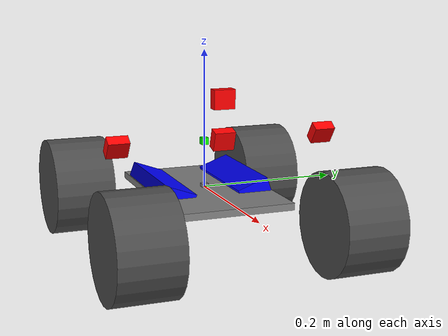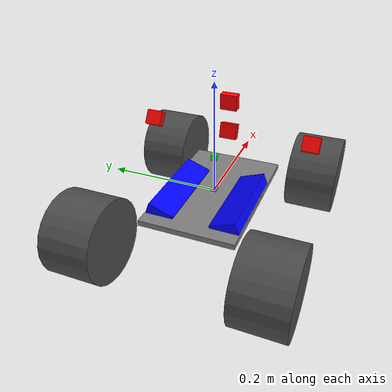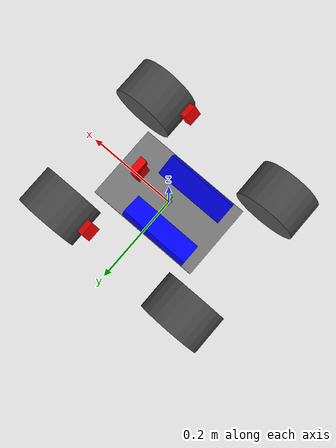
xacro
<?xml version="1.0"?>

<robot name="robot" xmlns:xacro="http://www.ros.org/wiki/xacro">
  <!-- Degree-to-radian conversions -->
  <xacro:property name="degrees_45" value="0.785398163"/>
  <xacro:property name="degrees_90" value="1.57079633"/>

  <!-- chassis_length is measured along the x axis, chassis_width
       along the y axis, and chassis_height along the z axis. -->
  <xacro:property name="chassis_length" value="0.258"/>
  <xacro:property name="chassis_width" value="0.168"/>
  <xacro:property name="chassis_height" value="0.01"/>
  <xacro:property name="chassis_mass" value="2.788"/>

  <xacro:property name="battery_x_offset" value="0.055"/>
  <xacro:property name="battery_dist" value="0.065"/>
  <xacro:property name="battery_comp_depth" value="0.02"/>
  <xacro:property name="battery_comp_angle" value="0.34906585"/>
  <xacro:property name="battery_length" value="0.16"/>
  <xacro:property name="battery_width" value="0.047"/>
  <xacro:property name="battery_height" value="0.024"/>
  <xacro:property name="battery_mass" value="0.5025"/>

  <xacro:property name="hub_dia" value="0.09652"/>
  <xacro:property name="tire_dia" value="0.14605"/>
  <xacro:property name="tire_width" value="0.0889"/>
  <xacro:property name="hex_hub_depth" value="0.01445"/>
  <xacro:property name="wheel_mass" value="0.29"/>

  <xacro:property name="wheelbase" value="0.335"/>
  <xacro:property name="hex_hub_dist" value="0.365"/>
  <xacro:property name="axle_length" value="0.03"/>
  <xacro:property name="wheel_travel" value="0.084"/>
  <xacro:property name="shock_z_offset" value="0.0655"/>

  <xacro:property name="shock_eff_limit" value="12.5106"/>
  <xacro:property name="shock_vel_limit" value="1000"/>

  <xacro:property name="axle_eff_limit" value="5.12766"/>
  <xacro:property name="axle_vel_limit" value="244.8696"/>

  <!-- These constants are used to simulate a Traxxas 2056 servo operated at
       6 V. servo_stall_torque is measured in N m. servo_no_load_speed is
       measured in rad/s. -->
  <xacro:property name="servo_stall_torque" value="0.5649"/>
  <xacro:property name="servo_no_load_speed" value="4.553"/>

  <!-- ctrl_period is gazebo_ros_control's control period. Unit: hertz. -->
  <xacro:property name="ctrl_period" value="0.01"/>

  <material name="battery_mat">
    <color rgba="0 0 1 1"/>
  </material>
  <material name="chassis_mat">
    <color rgba="0.5 0.5 0.5 1"/>
  </material>
  <material name="tire_mat">
    <color rgba="0.3 0.3 0.3 1"/>
  </material>
    <material name="camera_mat">
    <color rgba="1 0 0 1"/>
  </material>
  <material name="imu_mat">
    <color rgba="0 1 0 1"/>
  </material>

  <xacro:include filename="$(find traxxas_description)/urdf/robot04.gazebo.macro.xacro"/>

  <!-- Null inertial element. This is needed to make the model work with
       Gazebo. -->
  <xacro:macro name="null_inertial">
    <inertial>
      <mass value="0.001"/>
      <inertia ixx="0.001" ixy="0" ixz="0" iyy="0.001" iyz="0" izz="0.001"/>
    </inertial>
  </xacro:macro>

  <!-- Inertia of a solid cuboid. Width is measured along the x axis, depth
       along the y axis, and height along the z axis. -->
  <xacro:macro name="solid_cuboid_inertial"
               params="width depth height mass *origin">
    <inertial>
      <xacro:insert_block name="origin"/>
      <mass value="${mass}"/>
      <inertia ixx="${mass * (depth * depth + height * height) / 12}"
               ixy="0" ixz="0"
               iyy="${mass * (width * width + height * height) / 12}"
               iyz="0"
               izz="${mass * (width * width + depth * depth) / 12}"/>
    </inertial>
  </xacro:macro>

  <xacro:macro name="thick_walled_tube_inertial"
               params="inner_rad outer_rad height mass">
    <inertial>
      <mass value="${mass}"/>
      <inertia ixx="${(1 / 12) * mass * (3 * (inner_rad * inner_rad +
                    outer_rad * outer_rad) + height * height)}"
               ixy="0" ixz="0"
               iyy="${(1 / 12) * mass * (3 * (inner_rad * inner_rad +
                    outer_rad * outer_rad) + height * height)}"
               iyz="0"
               izz="${mass * (inner_rad * inner_rad +
                    outer_rad * outer_rad) / 2}"/>
    </inertial>
  </xacro:macro>

  <!-- Battery -->
  <xacro:macro name="battery" params="prefix reflect">
    <joint name="chassis_to_${prefix}_battery" type="fixed">
      <parent link="chassis"/>
      <child link="${prefix}_battery_offset"/>
      <origin xyz="${battery_x_offset - battery_length / 2}
                   ${reflect * battery_dist / 2}
                   0"
              rpy="${reflect * battery_comp_angle} 0 0"/>
    </joint>

    <link name="${prefix}_battery_offset">
      <xacro:null_inertial/>
    </link>

    <joint name="offset_to_${prefix}_battery" type="fixed">
      <parent link="${prefix}_battery_offset"/>
      <child link="${prefix}_battery"/>
      <origin xyz="0
                   ${reflect * battery_width / 2}
                   ${(battery_height / 2) - battery_comp_depth}"/>
    </joint>

    <link name="${prefix}_battery">
      <visual>
        <geometry>
          <box size="${battery_length} ${battery_width} ${battery_height}"/>
        </geometry>
        <material name="battery_mat"/>
      </visual>

      <collision>
        <geometry>
          <box size="${battery_length} ${battery_width} ${battery_height}"/>
        </geometry>
      </collision>

      <xacro:solid_cuboid_inertial
         width="${battery_length}" depth="${battery_width}"
         height="${battery_height}" mass="${battery_mass}">
        <origin/>
      </xacro:solid_cuboid_inertial>
    </link>

    <gazebo reference="${prefix}_battery">
      <material>Gazebo/Blue</material>
    </gazebo>
  </xacro:macro>

  <!-- Shock absorber -->
  <xacro:macro name="shock"
               params="lr_prefix fr_prefix lr_reflect fr_reflect child">
    <joint name="${lr_prefix}_${fr_prefix}_shock" type="prismatic">
      <parent link="chassis"/>
      <child link="${child}"/>

      <origin xyz="${fr_reflect * wheelbase / 2}
                   ${lr_reflect * ((hex_hub_dist / 2) - axle_length)}
                   ${(wheel_travel / 2) - shock_z_offset}"/>
      <axis xyz="0 0 -1"/>
      <limit lower="${-wheel_travel / 2}" upper="${wheel_travel / 2}"
             effort="${shock_eff_limit}" velocity="${shock_vel_limit}"/>
    </joint>
    <transmission name="${lr_prefix}_${fr_prefix}_shock_trans">
      <type>transmission_interface/SimpleTransmission</type>
      <joint name="${lr_prefix}_${fr_prefix}_shock">
        <hardwareInterface>hardware_interface/EffortJointInterface</hardwareInterface>
      </joint>
      <actuator name="${lr_prefix}_${fr_prefix}_shock_act">
        <hardwareInterface>hardware_interface/EffortJointInterface</hardwareInterface>
        <mechanicalReduction>1</mechanicalReduction>
      </actuator>
    </transmission>
  </xacro:macro>

  <!-- The "wheel" macro defines an axle carrier, axle, and wheel. -->
  <xacro:macro name="wheel" params="lr_prefix fr_prefix lr_reflect">
    <link name="${lr_prefix}_${fr_prefix}_axle_carrier">
      <xacro:null_inertial/>
    </link>

    <!-- The left and right axles have the same axis so that identical
         rotation values cause the wheels to rotate in the same direction. -->
    <joint name="${lr_prefix}_${fr_prefix}_axle" type="continuous">
      <parent link="${lr_prefix}_${fr_prefix}_axle_carrier"/>
      <child link="${lr_prefix}_${fr_prefix}_wheel"/>
      <origin rpy="${degrees_90} 0 0"/>
      <axis xyz="0 0 -1"/>
      <limit effort="${axle_eff_limit}" velocity="${axle_vel_limit}"/>
    </joint>
    <transmission name="${lr_prefix}_${fr_prefix}_axle_trans">
      <type>transmission_interface/SimpleTransmission</type>
      <joint name="${lr_prefix}_${fr_prefix}_axle">
        <hardwareInterface>hardware_interface/EffortJointInterface</hardwareInterface>
      </joint>
      <actuator name="${lr_prefix}_${fr_prefix}_axle_act">
        <hardwareInterface>hardware_interface/EffortJointInterface</hardwareInterface>
        <mechanicalReduction>1</mechanicalReduction>
      </actuator>
    </transmission>

    <link name="${lr_prefix}_${fr_prefix}_wheel">
      <visual>
        <origin xyz="0
                     ${lr_reflect * (axle_length - (tire_width /
                     2 - hex_hub_depth))}
                     0"/>
        <geometry>
          <cylinder radius="${tire_dia / 2}" length="${tire_width}"/>
        </geometry>
        <material name="tire_mat"/>
      </visual>

      <collision>
        <origin xyz="0
                     ${lr_reflect * (axle_length - (tire_width /
                     2 - hex_hub_depth))}
                     0"/>
        <geometry>
          <cylinder radius="${tire_dia / 2}" length="${tire_width}"/>
        </geometry>
      </collision>

      <xacro:thick_walled_tube_inertial
          inner_rad="${hub_dia / 2}" outer_rad="${tire_dia / 2}"
          height="${tire_width}" mass="${wheel_mass}"/>
    </link>

    <gazebo reference="${lr_prefix}_${fr_prefix}_wheel">
      <material>Gazebo/Black</material>
    </gazebo>
  </xacro:macro>

  <!-- Front wheel -->
  <xacro:macro name="front_wheel"
               params="lr_prefix fr_prefix lr_reflect fr_reflect">
    <xacro:shock lr_prefix="${lr_prefix}" fr_prefix="${fr_prefix}"
                 lr_reflect="${lr_reflect}" fr_reflect="${fr_reflect}"
                 child="${lr_prefix}_steering_link"/>

    <link name="${lr_prefix}_steering_link">
      <xacro:null_inertial/>
    </link>

    <joint name="${lr_prefix}_steering_joint" type="revolute">
      <parent link="${lr_prefix}_steering_link"/>
      <child link="${lr_prefix}_${fr_prefix}_axle_carrier"/>
      <axis xyz="0 0 1"/>
      <limit lower="${-degrees_45}" upper="${degrees_45}"
             effort="${servo_stall_torque}" velocity="${servo_no_load_speed}"/>
    </joint>
    <transmission name="${lr_prefix}_steering_trans">
      <type>transmission_interface/SimpleTransmission</type>
      <joint name="${lr_prefix}_steering_joint">
        <hardwareInterface>hardware_interface/EffortJointInterface</hardwareInterface>
      </joint>
      <actuator name="${lr_prefix}_steering_act">
        <hardwareInterface>hardware_interface/EffortJointInterface</hardwareInterface>
        <mechanicalReduction>1</mechanicalReduction>
      </actuator>
    </transmission>

    <xacro:wheel lr_prefix="${lr_prefix}" fr_prefix="${fr_prefix}"
                 lr_reflect="${lr_reflect}"/>
  </xacro:macro>

  <!-- Rear wheel -->
  <xacro:macro name="rear_wheel"
               params="lr_prefix fr_prefix lr_reflect fr_reflect">
    <xacro:shock lr_prefix="${lr_prefix}" fr_prefix="${fr_prefix}"
                 lr_reflect="${lr_reflect}" fr_reflect="${fr_reflect}"
                 child="${lr_prefix}_${fr_prefix}_axle_carrier"/>
    <xacro:wheel lr_prefix="${lr_prefix}" fr_prefix="${fr_prefix}"
                 lr_reflect="${lr_reflect}"/>
  </xacro:macro>

  <!-- base_link must have geometry so that its axes can be displayed in
       rviz. -->
  <link name="base_link">
    <visual>
      <geometry>
        <box size="0.01 0.01 0.01"/>
      </geometry>
      <material name="chassis_mat"/>
    </visual>
  </link>
  <gazebo reference="base_link">
    <material>Gazebo/Grey</material>
  </gazebo>

  <!-- Chassis -->
  <link name="chassis">
    <visual>
      <origin xyz="0 0 ${-chassis_height / 2}"/>
      <geometry>
        <box size="${chassis_length} ${chassis_width} ${chassis_height}"/>
      </geometry>
      <material name="chassis_mat"/>
    </visual>

    <collision>
      <origin xyz="0 0 ${-chassis_height / 2}"/>
      <geometry>
        <box size="${chassis_length} ${chassis_width} ${chassis_height}"/>
      </geometry>
    </collision>

    <xacro:solid_cuboid_inertial
        width="${chassis_length}" depth="${chassis_width}"
        height="${chassis_height}" mass="${chassis_mass}">
      <origin xyz="0 0 ${-chassis_height / 2}"/>
    </xacro:solid_cuboid_inertial>
  </link>
  <gazebo reference="chassis">
    <material>Gazebo/Grey</material>
  </gazebo>

  <joint name="base_link_to_chasis" type="fixed">
    <parent link="base_link"/>
    <child link="chassis"/>
  </joint>

  <!-- Batteries -->
  <xacro:battery prefix="left" reflect="1"/>
  <xacro:battery prefix="right" reflect="-1"/>

  <!-- Wheels -->
  <xacro:front_wheel lr_prefix="left" fr_prefix="front"
                     lr_reflect="1" fr_reflect="1"/>
  <xacro:front_wheel lr_prefix="right" fr_prefix="front"
                     lr_reflect="-1" fr_reflect="1"/>
  <xacro:rear_wheel lr_prefix="left" fr_prefix="rear"
                    lr_reflect="1" fr_reflect="-1"/>
  <xacro:rear_wheel lr_prefix="right" fr_prefix="rear"
                    lr_reflect="-1" fr_reflect="-1"/>

  <joint name="imu_joint" type="fixed">
    <parent link="base_link"/>
    <child link="imu_link"/>
    <origin xyz="0.0 0 0.068" rpy="0 0 0"/>
  </joint>

  <link name="imu_link">
    <visual>
      <geometry>
        <box size="0.01 0.01 0.01"/>
      </geometry>
      <material name="imu_mat"/>
    </visual>
  </link>

  <!--lane camara center -->
  <joint name="camera_joint" type="fixed">
    <origin xyz="0.073 0.0 0.084" rpy="0 0.3 0"/>
    <parent link="base_link"/>
    <child link="camera_link"/>
  </joint>

  <link name="camera_link">
    <visual>
      <geometry>
        <box size="0.015 0.030 0.027"/>
      </geometry>
      <material name="camera_mat"/>
    </visual>
    <collision>
      <origin xyz="0.005 0.0 0.013" rpy="0 0 0"/>
      <geometry>
        <box size="0.015 0.030 0.027"/>
      </geometry>
    </collision>
  </link>

  <joint name="camera_rgb_joint" type="fixed">
    <origin xyz="0.003 0.0 0.45" rpy="0 0 0"/>
      <parent link="camera_link"/>
    <child link="camera_rgb_frame"/>
  </joint>
  <link name="camera_rgb_frame"/>

  <joint name="camera_rgb_optical_joint" type="fixed">
    <origin xyz="0 0 0" rpy="-1.57 0 -1.57"/>
    <parent link="camera_rgb_frame"/>
    <child link="camera_rgb_optical_frame"/>
  </joint>
  <link name="camera_rgb_optical_frame"/>

  <!--signal camara -->
  <joint name="camera2_joint" type="fixed">
    <origin xyz="0.073 0.0 0.14" rpy="0 0 0"/>
    <parent link="base_link"/>
    <child link="camera2_link"/>
  </joint>

  <link name="camera2_link">
    <visual>
      <geometry>
        <box size="0.015 0.030 0.027"/>
      </geometry>
      <material name="camera_mat"/>
    </visual>
    <collision>
      <origin xyz="0.005 0.0 0.013" rpy="0 0 0"/>
      <geometry>
        <box size="0.015 0.030 0.027"/>
      </geometry>
    </collision>
  </link>

  <joint name="camera2_rgb_joint" type="fixed">
    <origin xyz="0.003 0.0 0.45" rpy="0 0 0"/>
    <parent link="camera2_link"/>
    <child link="camera2_rgb_frame"/>
  </joint>
  <link name="camera2_rgb_frame"/>

  <joint name="camera2_rgb_optical_joint" type="fixed">
    <origin xyz="0 0 0" rpy="-1.57 0 -1.57"/>
    <parent link="camera2_rgb_frame"/>
    <child link="camera2_rgb_optical_frame"/>
  </joint>
  <link name="camera2_rgb_optical_frame"/>

  <!--lane camara left -->
  <joint name="cameral_joint" type="fixed">
    <origin xyz="0.073 0.15 0.084" rpy="0 0.6 0"/>
    <parent link="base_link"/>
    <child link="cameral_link"/>
  </joint>

  <link name="cameral_link">
    <visual>
      <geometry>
        <box size="0.015 0.030 0.027"/>
      </geometry>
      <material name="camera_mat"/>
    </visual>
    <collision>
      <origin xyz="0.005 0.011 0.013" rpy="0 0 0"/>
      <geometry>
        <box size="0.015 0.030 0.027"/>
      </geometry>
    </collision>
  </link>

  <joint name="cameral_rgb_joint" type="fixed">
    <origin xyz="0.003 0.011 0.45" rpy="0 0 0"/>
      <parent link="cameral_link"/>
    <child link="cameral_rgb_frame"/>
  </joint>
  <link name="cameral_rgb_frame"/>

  <joint name="cameral_rgb_optical_joint" type="fixed">
    <origin xyz="0 0 0" rpy="-1.57 0 -1.57"/>
    <parent link="cameral_rgb_frame"/>
    <child link="cameral_rgb_optical_frame"/>
  </joint>
  <link name="cameral_rgb_optical_frame"/>

  <!--lane camara right -->
  <joint name="camerar_joint" type="fixed">
    <origin xyz="0.073 -0.15 0.084" rpy="0 0.6 0"/>
    <parent link="base_link"/>
    <child link="camerar_link"/>
  </joint>

  <link name="camerar_link">
    <visual>
      <geometry>
        <box size="0.015 0.030 0.027"/>
      </geometry>
      <material name="camera_mat"/>
    </visual>
    <collision>
      <origin xyz="0.005 0.011 0.013" rpy="0 0 0"/>
      <geometry>
        <box size="0.015 0.030 0.027"/>
      </geometry>
    </collision>
  </link>

  <joint name="camerar_rgb_joint" type="fixed">
    <origin xyz="0.003 0.011 0.45" rpy="0 0 0"/>
      <parent link="camerar_link"/>
    <child link="camerar_rgb_frame"/>
  </joint>
  <link name="camerar_rgb_frame"/>

  <joint name="camerar_rgb_optical_joint" type="fixed">
    <origin xyz="0 0 0" rpy="-1.57 0 -1.57"/>
    <parent link="camerar_rgb_frame"/>
    <child link="camerar_rgb_optical_frame"/>
  </joint>
  <link name="camerar_rgb_optical_frame"/>

  <!--gazebo control -->
  <gazebo>
    <plugin name="gazebo_ros_control" filename="libgazebo_ros_control.so">
    </plugin>
  </gazebo>
</robot>
